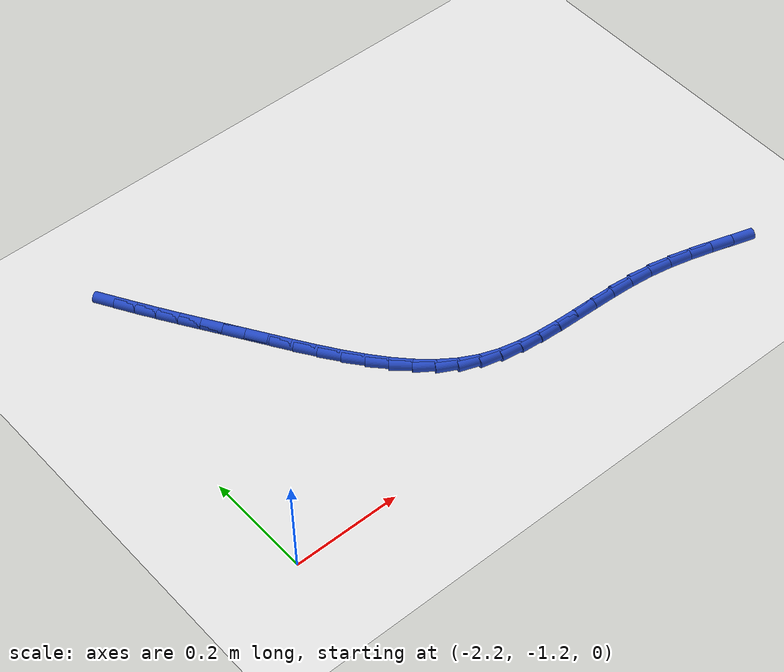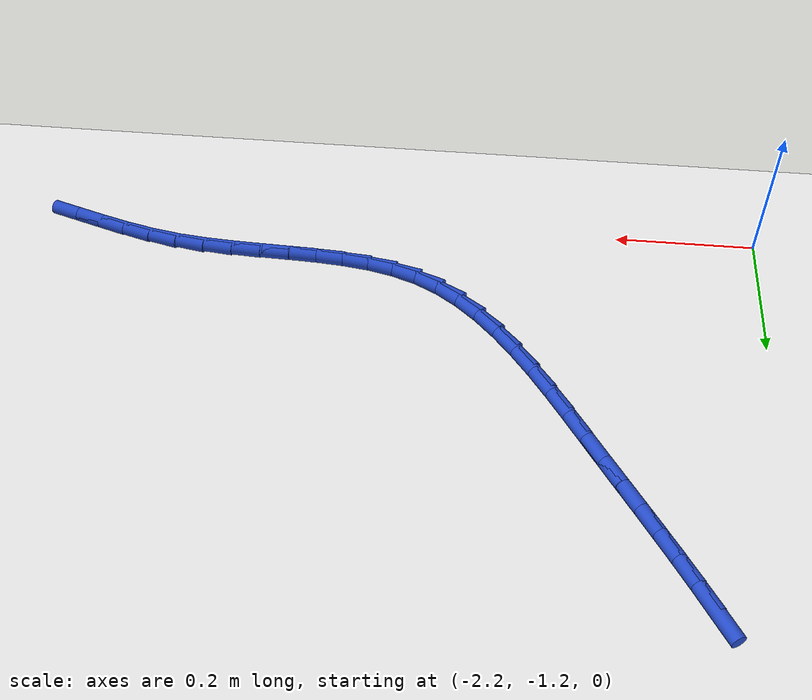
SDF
<sdf version="1.6">
 <world name="default">
  <model name="ground_plane">
   <static>1</static>
   <link name="link">
    <collision name="collision">
     <geometry><plane><normal>0 0 1</normal><size>100 100</size></plane></geometry>
     <surface><friction><ode><mu>100</mu><mu2>50</mu2></ode></friction></surface>
    </collision>
    <visual name="visual">
     <cast_shadows>0</cast_shadows>
     <geometry><plane><normal>0 0 1</normal><size>100 100</size></plane></geometry>
     <material>
      <script><uri>file://media/materials/scripts/gazebo.material</uri><name>Gazebo/WhiteGlow</name></script>
     </material>
    </visual>
   </link>
  </model>
  <model name="line">
   <link name="link_104">
    <pose>-2.1005744447182617 -0.5799710874475765 0.01 0 1.57 -1.0406357233667891</pose>
    <collision name="collision">
     <geometry><cylinder><radius>0.01</radius><length>0.08</length></cylinder></geometry>
    </collision>
    <visual name="visual">
     <material>
      <script><name>Gazebo/Blue</name><uri>file://media/materials/scripts/gazebo.material</uri></script>
     </material>
     <geometry><cylinder><radius>0.01</radius><length>0.08</length></cylinder></geometry>
    </visual>
   </link>
   <link name="link_105">
    <pose>-2.080849772240621 -0.6136233134344241 0.01 0 1.57 -1.026892623623757</pose>
    <collision name="collision">
     <geometry><cylinder><radius>0.01</radius><length>0.08</length></cylinder></geometry>
    </collision>
    <visual name="visual">
     <material>
      <script><name>Gazebo/Blue</name><uri>file://media/materials/scripts/gazebo.material</uri></script>
     </material>
     <geometry><cylinder><radius>0.01</radius><length>0.08</length></cylinder></geometry>
    </visual>
   </link>
   <link name="link_106">
    <pose>-2.0606079677295592 -0.6470947578209223 0.01 0 1.57 -1.0164529951770882</pose>
    <collision name="collision">
     <geometry><cylinder><radius>0.01</radius><length>0.08</length></cylinder></geometry>
    </collision>
    <visual name="visual">
     <material>
      <script><name>Gazebo/Blue</name><uri>file://media/materials/scripts/gazebo.material</uri></script>
     </material>
     <geometry><cylinder><radius>0.01</radius><length>0.08</length></cylinder></geometry>
    </visual>
   </link>
   <link name="link_107">
    <pose>-2.0398961179164408 -0.680549682509415 0.01 0 1.57 -1.0093528381998442</pose>
    <collision name="collision">
     <geometry><cylinder><radius>0.01</radius><length>0.08</length></cylinder></geometry>
    </collision>
    <visual name="visual">
     <material>
      <script><name>Gazebo/Blue</name><uri>file://media/materials/scripts/gazebo.material</uri></script>
     </material>
     <geometry><cylinder><radius>0.01</radius><length>0.08</length></cylinder></geometry>
    </visual>
   </link>
   <link name="link_108">
    <pose>-2.0187613095326316 -0.714152349402247 0.01 0 1.57 -1.0055666504408236</pose>
    <collision name="collision">
     <geometry><cylinder><radius>0.01</radius><length>0.08</length></cylinder></geometry>
    </collision>
    <visual name="visual">
     <material>
      <script><name>Gazebo/Blue</name><uri>file://media/materials/scripts/gazebo.material</uri></script>
     </material>
     <geometry><cylinder><radius>0.01</radius><length>0.08</length></cylinder></geometry>
    </visual>
   </link>
   <link name="link_109">
    <pose>-1.9972506293094956 -0.7480670204017632 0.01 0 1.57 -1.0050130099408847</pose>
    <collision name="collision">
     <geometry><cylinder><radius>0.01</radius><length>0.08</length></cylinder></geometry>
    </collision>
    <visual name="visual">
     <material>
      <script><name>Gazebo/Blue</name><uri>file://media/materials/scripts/gazebo.material</uri></script>
     </material>
     <geometry><cylinder><radius>0.01</radius><length>0.08</length></cylinder></geometry>
    </visual>
   </link>
   <link name="link_110">
    <pose>-1.975411163978399 -0.7824579574103071 0.01 0 1.57 -1.0074849000589137</pose>
    <collision name="collision">
     <geometry><cylinder><radius>0.01</radius><length>0.08</length></cylinder></geometry>
    </collision>
    <visual name="visual">
     <material>
      <script><name>Gazebo/Blue</name><uri>file://media/materials/scripts/gazebo.material</uri></script>
     </material>
     <geometry><cylinder><radius>0.01</radius><length>0.08</length></cylinder></geometry>
    </visual>
   </link>
   <link name="link_111">
    <pose>-1.9532887327531616 -0.8174855152771737 0.01 0 1.57 -1.0074612652439088</pose>
    <collision name="collision">
     <geometry><cylinder><radius>0.01</radius><length>0.08</length></cylinder></geometry>
    </collision>
    <visual name="visual">
     <material>
      <script><name>Gazebo/Blue</name><uri>file://media/materials/scripts/gazebo.material</uri></script>
     </material>
     <geometry><cylinder><radius>0.01</radius><length>0.08</length></cylinder></geometry>
    </visual>
   </link>
   <link name="link_112">
    <pose>-1.930838420000358 -0.8530303636802653 0.01 0 1.57 -0.9962017713672053</pose>
    <collision name="collision">
     <geometry><cylinder><radius>0.01</radius><length>0.08</length></cylinder></geometry>
    </collision>
    <visual name="visual">
     <material>
      <script><name>Gazebo/Blue</name><uri>file://media/materials/scripts/gazebo.material</uri></script>
     </material>
     <geometry><cylinder><radius>0.01</radius><length>0.08</length></cylinder></geometry>
    </visual>
   </link>
   <link name="link_113">
    <pose>-1.9078655072677977 -0.8885114133557663 0.01 0 1.57 -0.9727348324474449</pose>
    <collision name="collision">
     <geometry><cylinder><radius>0.01</radius><length>0.08</length></cylinder></geometry>
    </collision>
    <visual name="visual">
     <material>
      <script><name>Gazebo/Blue</name><uri>file://media/materials/scripts/gazebo.material</uri></script>
     </material>
     <geometry><cylinder><radius>0.01</radius><length>0.08</length></cylinder></geometry>
    </visual>
   </link>
   <link name="link_114">
    <pose>-1.8841612558986205 -0.9233043585308203 0.01 0 1.57 -0.9362641575936358</pose>
    <collision name="collision">
     <geometry><cylinder><radius>0.01</radius><length>0.08</length></cylinder></geometry>
    </collision>
    <visual name="visual">
     <material>
      <script><name>Gazebo/Blue</name><uri>file://media/materials/scripts/gazebo.material</uri></script>
     </material>
     <geometry><cylinder><radius>0.01</radius><length>0.08</length></cylinder></geometry>
    </visual>
   </link>
   <link name="link_115">
    <pose>-1.859516927235963 -0.9567848934325699 0.01 0 1.57 -0.88535998286936</pose>
    <collision name="collision">
     <geometry><cylinder><radius>0.01</radius><length>0.08</length></cylinder></geometry>
    </collision>
    <visual name="visual">
     <material>
      <script><name>Gazebo/Blue</name><uri>file://media/materials/scripts/gazebo.material</uri></script>
     </material>
     <geometry><cylinder><radius>0.01</radius><length>0.08</length></cylinder></geometry>
    </visual>
   </link>
   <link name="link_116">
    <pose>-1.8337237826229662 -0.9883287122881576 0.01 0 1.57 -0.8180248088802524</pose>
    <collision name="collision">
     <geometry><cylinder><radius>0.01</radius><length>0.08</length></cylinder></geometry>
    </collision>
    <visual name="visual">
     <material>
      <script><name>Gazebo/Blue</name><uri>file://media/materials/scripts/gazebo.material</uri></script>
     </material>
     <geometry><cylinder><radius>0.01</radius><length>0.08</length></cylinder></geometry>
    </visual>
   </link>
   <link name="link_117">
    <pose>-1.8065730834027673 -1.0173115093247265 0.01 0 1.57 -0.7318942576528683</pose>
    <collision name="collision">
     <geometry><cylinder><radius>0.01</radius><length>0.08</length></cylinder></geometry>
    </collision>
    <visual name="visual">
     <material>
      <script><name>Gazebo/Blue</name><uri>file://media/materials/scripts/gazebo.material</uri></script>
     </material>
     <geometry><cylinder><radius>0.01</radius><length>0.08</length></cylinder></geometry>
    </visual>
   </link>
   <link name="link_118">
    <pose>-1.777856090918505 -1.0431089787694194 0.01 0 1.57 -0.624747926349608</pose>
    <collision name="collision">
     <geometry><cylinder><radius>0.01</radius><length>0.08</length></cylinder></geometry>
    </collision>
    <visual name="visual">
     <material>
      <script><name>Gazebo/Blue</name><uri>file://media/materials/scripts/gazebo.material</uri></script>
     </material>
     <geometry><cylinder><radius>0.01</radius><length>0.08</length></cylinder></geometry>
    </visual>
   </link>
   <link name="link_119">
    <pose>-1.747364066513318 -1.0650968148493796 0.01 0 1.57 -0.49555046256168267</pose>
    <collision name="collision">
     <geometry><cylinder><radius>0.01</radius><length>0.08</length></cylinder></geometry>
    </collision>
    <visual name="visual">
     <material>
      <script><name>Gazebo/Blue</name><uri>file://media/materials/scripts/gazebo.material</uri></script>
     </material>
     <geometry><cylinder><radius>0.01</radius><length>0.08</length></cylinder></geometry>
    </visual>
   </link>
   <link name="link_120">
    <pose>-1.7148884201831356 -1.082651167455291 0.01 0 1.57 -0.3559049030264302</pose>
    <collision name="collision">
     <geometry><cylinder><radius>0.01</radius><length>0.08</length></cylinder></geometry>
    </collision>
    <visual name="visual">
     <material>
      <script><name>Gazebo/Blue</name><uri>file://media/materials/scripts/gazebo.material</uri></script>
     </material>
     <geometry><cylinder><radius>0.01</radius><length>0.08</length></cylinder></geometry>
    </visual>
   </link>
   <link name="link_121">
    <pose>-1.6803340985937103 -1.0954962090122429 0.01 0 1.57 -0.23785999767089555</pose>
    <collision name="collision">
     <geometry><cylinder><radius>0.01</radius><length>0.08</length></cylinder></geometry>
    </collision>
    <visual name="visual">
     <material>
      <script><name>Gazebo/Blue</name><uri>file://media/materials/scripts/gazebo.material</uri></script>
     </material>
     <geometry><cylinder><radius>0.01</radius><length>0.08</length></cylinder></geometry>
    </visual>
   </link>
   <link name="link_122">
    <pose>-1.643921914741845 -1.1043243330604793 0.01 0 1.57 -0.14815424962547968</pose>
    <collision name="collision">
     <geometry><cylinder><radius>0.01</radius><length>0.08</length></cylinder></geometry>
    </collision>
    <visual name="visual">
     <material>
      <script><name>Gazebo/Blue</name><uri>file://media/materials/scripts/gazebo.material</uri></script>
     </material>
     <geometry><cylinder><radius>0.01</radius><length>0.08</length></cylinder></geometry>
    </visual>
   </link>
   <link name="link_123">
    <pose>-1.6059271733135794 -1.109994965833926 0.01 0 1.57 -0.08560191552391141</pose>
    <collision name="collision">
     <geometry><cylinder><radius>0.01</radius><length>0.08</length></cylinder></geometry>
    </collision>
    <visual name="visual">
     <material>
      <script><name>Gazebo/Blue</name><uri>file://media/materials/scripts/gazebo.material</uri></script>
     </material>
     <geometry><cylinder><radius>0.01</radius><length>0.08</length></cylinder></geometry>
    </visual>
   </link>
   <link name="link_124">
    <pose>-1.566625178994955 -1.1133675335665127 0.01 0 1.57 -0.047911233298083965</pose>
    <collision name="collision">
     <geometry><cylinder><radius>0.01</radius><length>0.08</length></cylinder></geometry>
    </collision>
    <visual name="visual">
     <material>
      <script><name>Gazebo/Blue</name><uri>file://media/materials/scripts/gazebo.material</uri></script>
     </material>
     <geometry><cylinder><radius>0.01</radius><length>0.08</length></cylinder></geometry>
    </visual>
   </link>
   <link name="link_125">
    <pose>-1.5262912364720118 -1.1153014624921658 0.01 0 1.57 -0.03295708248124229</pose>
    <collision name="collision">
     <geometry><cylinder><radius>0.01</radius><length>0.08</length></cylinder></geometry>
    </collision>
    <visual name="visual">
     <material>
      <script><name>Gazebo/Blue</name><uri>file://media/materials/scripts/gazebo.material</uri></script>
     </material>
     <geometry><cylinder><radius>0.01</radius><length>0.08</length></cylinder></geometry>
    </visual>
   </link>
   <link name="link_126">
    <pose>-1.4852006504307897 -1.1166561788448135 0.01 0 1.57 -0.039307486964877625</pose>
    <collision name="collision">
     <geometry><cylinder><radius>0.01</radius><length>0.08</length></cylinder></geometry>
    </collision>
    <visual name="visual">
     <material>
      <script><name>Gazebo/Blue</name><uri>file://media/materials/scripts/gazebo.material</uri></script>
     </material>
     <geometry><cylinder><radius>0.01</radius><length>0.08</length></cylinder></geometry>
    </visual>
   </link>
   <link name="link_127">
    <pose>-1.4436287255573308 -1.1182911088583831 0.01 0 1.57 -0.06631490788443005</pose>
    <collision name="collision">
     <geometry><cylinder><radius>0.01</radius><length>0.08</length></cylinder></geometry>
    </collision>
    <visual name="visual">
     <material>
      <script><name>Gazebo/Blue</name><uri>file://media/materials/scripts/gazebo.material</uri></script>
     </material>
     <geometry><cylinder><radius>0.01</radius><length>0.08</length></cylinder></geometry>
    </visual>
   </link>
   <link name="link_128">
    <pose>-1.4018507665376743 -1.1210656787668025 0.01 0 1.57 -0.11395598550824884</pose>
    <collision name="collision">
     <geometry><cylinder><radius>0.01</radius><length>0.08</length></cylinder></geometry>
    </collision>
    <visual name="visual">
     <material>
      <script><name>Gazebo/Blue</name><uri>file://media/materials/scripts/gazebo.material</uri></script>
     </material>
     <geometry><cylinder><radius>0.01</radius><length>0.08</length></cylinder></geometry>
    </visual>
   </link>
   <link name="link_129">
    <pose>-1.3601420780578612 -1.1258393148039993 0.01 0 1.57 -0.18105472577503492</pose>
    <collision name="collision">
     <geometry><cylinder><radius>0.01</radius><length>0.08</length></cylinder></geometry>
    </collision>
    <visual name="visual">
     <material>
      <script><name>Gazebo/Blue</name><uri>file://media/materials/scripts/gazebo.material</uri></script>
     </material>
     <geometry><cylinder><radius>0.01</radius><length>0.08</length></cylinder></geometry>
    </visual>
   </link>
   <link name="link_130">
    <pose>-1.3187692913268476 -1.1334129918821279 0.01 0 1.57 -0.24497878687994096</pose>
    <collision name="collision">
     <geometry><cylinder><radius>0.01</radius><length>0.08</length></cylinder></geometry>
    </collision>
    <visual name="visual">
     <material>
      <script><name>Gazebo/Blue</name><uri>file://media/materials/scripts/gazebo.material</uri></script>
     </material>
     <geometry><cylinder><radius>0.01</radius><length>0.08</length></cylinder></geometry>
    </visual>
   </link>
   <link name="link_131">
    <pose>-1.2778585150324189 -1.1436406913349968 0.01 0 1.57 -0.28775071403900127</pose>
    <collision name="collision">
     <geometry><cylinder><radius>0.01</radius><length>0.08</length></cylinder></geometry>
    </collision>
    <visual name="visual">
     <material>
      <script><name>Gazebo/Blue</name><uri>file://media/materials/scripts/gazebo.material</uri></script>
     </material>
     <geometry><cylinder><radius>0.01</radius><length>0.08</length></cylinder></geometry>
    </visual>
   </link>
   <link name="link_132">
    <pose>-1.237421912105411 -1.1556085040599458 0.01 0 1.57 -0.30940194917738173</pose>
    <collision name="collision">
     <geometry><cylinder><radius>0.01</radius><length>0.08</length></cylinder></geometry>
    </collision>
    <visual name="visual">
     <material>
      <script><name>Gazebo/Blue</name><uri>file://media/materials/scripts/gazebo.material</uri></script>
     </material>
     <geometry><cylinder><radius>0.01</radius><length>0.08</length></cylinder></geometry>
    </visual>
   </link>
   <link name="link_133">
    <pose>-1.1974683606929453 -1.1683803845091592 0.01 0 1.57 -0.30998298765610044</pose>
    <collision name="collision">
     <geometry><cylinder><radius>0.01</radius><length>0.08</length></cylinder></geometry>
    </collision>
    <visual name="visual">
     <material>
      <script><name>Gazebo/Blue</name><uri>file://media/materials/scripts/gazebo.material</uri></script>
     </material>
     <geometry><cylinder><radius>0.01</radius><length>0.08</length></cylinder></geometry>
    </visual>
   </link>
  </model>
 </world>
</sdf>
